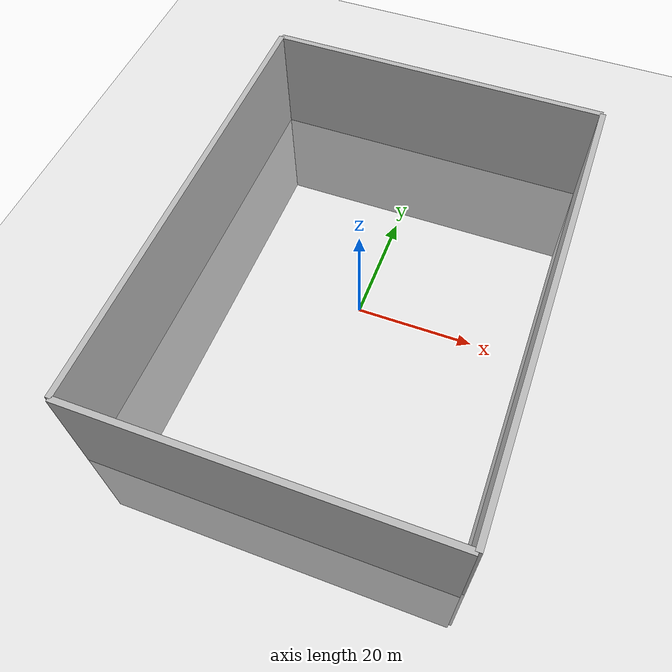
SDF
<sdf version="1.4">
 <world name="default">
  <include><uri>model://ground_plane</uri></include>
  <include><uri>model://sun</uri></include>
  <scene><shadows>0</shadows></scene>
  <model name="Wall">
   <static>true</static>
   <link name="wall1">
    <pose>30 0 0 0 0 0</pose>
    <visual name="visual"><geometry><box><size>1 80 40</size></box></geometry></visual>
    <collision name="collision"><geometry><box><size>1 80 40</size></box></geometry></collision>
   </link>
   <link name="wall2">
    <pose>-30 0 0 0 0 0</pose>
    <visual name="visual"><geometry><box><size>1 80 40</size></box></geometry></visual>
    <collision name="collision"><geometry><box><size>1 80 40</size></box></geometry></collision>
   </link>
   <link name="wall3">
    <pose>0 -40 0 0 0 1.57</pose>
    <visual name="visual"><geometry><box><size>1 60 40</size></box></geometry></visual>
    <collision name="collision"><geometry><box><size>1 60 40</size></box></geometry></collision>
   </link>
   <link name="wall4">
    <pose>0 40 0 0 0 1.57</pose>
    <visual name="visual"><geometry><box><size>1 60 40</size></box></geometry></visual>
    <collision name="collision"><geometry><box><size>1 60 40</size></box></geometry></collision>
   </link>
  </model>
  <physics name="default_physics" default="0" type="ode">
   <max_step_size>0.001</max_step_size>
   <real_time_factor>.25</real_time_factor>
   <real_time_update_rate>250</real_time_update_rate>
  </physics>
 </world>
</sdf>
